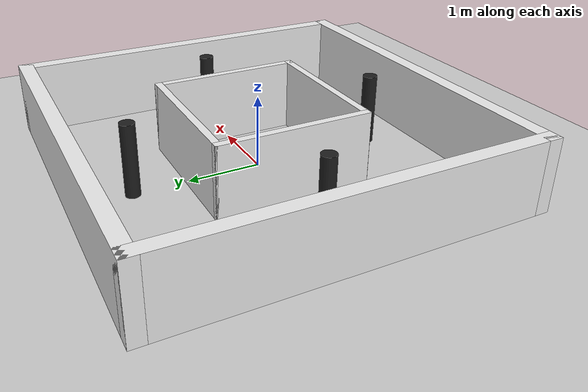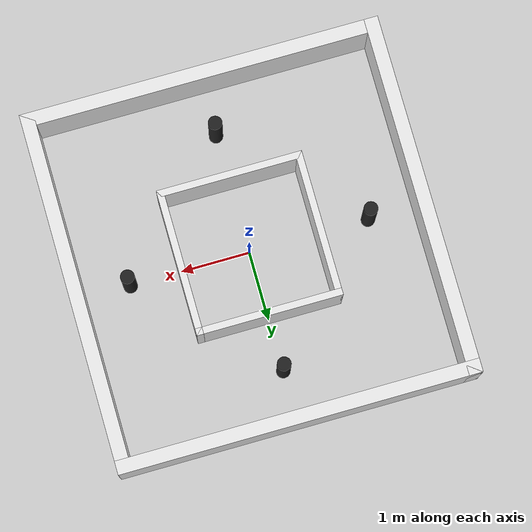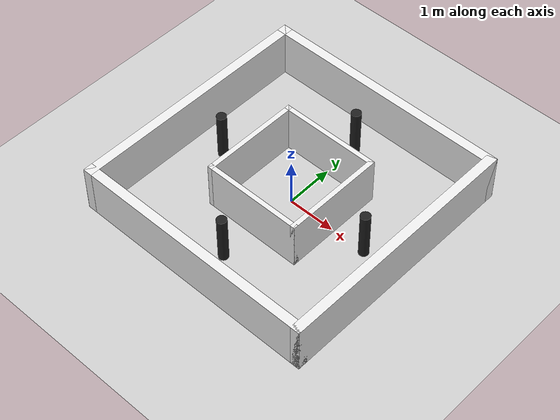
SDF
<sdf version='1.6'>
  <world name='default'>
    <scene>
      <ambient>0.4 0.4 0.4 1</ambient>
      <background>0.7 0.7 0.7 1</background>
      <shadows>1</shadows>
    </scene>

    <gui fullscreen='0'>
      <camera name='user_camera'>
        <pose frame=''>0 -6 8 0 0.8 1.57</pose>
        <view_controller>orbit</view_controller>
        <projection_type>perspective</projection_type>
      </camera>
    </gui>

    <include>
      <uri>model://sun</uri>
    </include>

    <!-- Ground Plane (10x10) -->
    <model name='custom_ground'>
      <static>1</static>
      <link name='link'>
        <collision name='collision'>
          <geometry>
            <plane>
              <normal>0 0 1</normal>
              <size>10 10</size>
            </plane>
          </geometry>
          <surface>
            <friction>
              <ode>
                <mu>100</mu>
                <mu2>50</mu2>
              </ode>
            </friction>
          </surface>
        </collision>
        <visual name='visual'>
          <cast_shadows>0</cast_shadows>
          <geometry>
            <plane>
              <normal>0 0 1</normal>
              <size>10 10</size>
            </plane>
          </geometry>
          <material>
            <script>
              <uri>file:///home/xlf/test_ws/src/model_test/media/materials/scripts/custom_course.material</uri>
              <name>Custom/SandRocks</name>
            </script>
          </material>
        </visual>
      </link>
    </model>

    <!-- OUTER WALLS (5x5m Box) -->
    <model name='wall_1'>
      <pose>0 2.5 0.5 0 0 0</pose>
      <static>1</static>
      <link name='link'>
        <collision name='collision'>
          <geometry> <box> <size>5.2 0.2 1</size> </box> </geometry>
        </collision>
        <visual name='visual'>
          <geometry> <box> <size>5.2 0.2 1</size> </box> </geometry>
          <material>
            <script> <uri>file://media/materials/scripts/gazebo.material</uri> <name>Gazebo/White</name> </script>
          </material>
        </visual>
      </link>
    </model>

    <model name='wall_2'>
      <pose>0 -2.5 0.5 0 0 0</pose>
      <static>1</static>
      <link name='link'>
        <collision name='collision'>
          <geometry> <box> <size>5.2 0.2 1</size> </box> </geometry>
        </collision>
        <visual name='visual'>
          <geometry> <box> <size>5.2 0.2 1</size> </box> </geometry>
          <material>
            <script> <uri>file://media/materials/scripts/gazebo.material</uri> <name>Gazebo/White</name> </script>
          </material>
        </visual>
      </link>
    </model>

    <model name='wall_3'>
      <pose>2.5 0 0.5 0 0 0</pose>
      <static>1</static>
      <link name='link'>
        <collision name='collision'>
          <geometry> <box> <size>0.2 5.2 1</size> </box> </geometry>
        </collision>
        <visual name='visual'>
          <geometry> <box> <size>0.2 5.2 1</size> </box> </geometry>
          <material>
            <script> <uri>file://media/materials/scripts/gazebo.material</uri> <name>Gazebo/White</name> </script>
          </material>
        </visual>
      </link>
    </model>

    <model name='wall_4'>
      <pose>-2.5 0 0.5 0 0 0</pose>
      <static>1</static>
      <link name='link'>
        <collision name='collision'>
          <geometry> <box> <size>0.2 5.2 1</size> </box> </geometry>
        </collision>
        <visual name='visual'>
          <geometry> <box> <size>0.2 5.2 1</size> </box> </geometry>
          <material>
            <script> <uri>file://media/materials/scripts/gazebo.material</uri> <name>Gazebo/White</name> </script>
          </material>
        </visual>
      </link>
    </model>

    <!-- INNER WALLS (3.33x3.33m Box) -->
    <model name='inner_wall_1'>
      <pose>0 1 0.5 0 0 0</pose>
      <static>1</static>
      <link name='link'>
        <collision name='collision'>
          <geometry> <box> <size>2.1 0.1 1</size> </box> </geometry>
        </collision>
        <visual name='visual'>
          <geometry> <box> <size>2.1 0.1 1</size> </box> </geometry>
          <material>
            <script> <uri>file://media/materials/scripts/gazebo.material</uri> <name>Gazebo/White</name> </script>
          </material>
        </visual>
      </link>
    </model>

    <model name='inner_wall_2'>
      <pose>0 -1 0.5 0 0 0</pose>
      <static>1</static>
      <link name='link'>
        <collision name='collision'>
          <geometry> <box> <size>2.1 0.1 1</size> </box> </geometry>
        </collision>
        <visual name='visual'>
          <geometry> <box> <size>2.1 0.1 1</size> </box> </geometry>
          <material>
            <script> <uri>file://media/materials/scripts/gazebo.material</uri> <name>Gazebo/White</name> </script>
          </material>
        </visual>
      </link>
    </model>

    <model name='inner_wall_3'>
      <pose>1 0 0.5 0 0 0</pose>
      <static>1</static>
      <link name='link'>
        <collision name='collision'>
          <geometry> <box> <size>0.1 2.1 1</size> </box> </geometry>
        </collision>
        <visual name='visual'>
          <geometry> <box> <size>0.1 2.1 1</size> </box> </geometry>
          <material>
            <script> <uri>file://media/materials/scripts/gazebo.material</uri> <name>Gazebo/White</name> </script>
          </material>
        </visual>
      </link>
    </model>

    <model name='inner_wall_4'>
      <pose>-1 0 0.5 0 0 0</pose>
      <static>1</static>
      <link name='link'>
        <collision name='collision'>
          <geometry> <box> <size>0.1 2.1 1</size> </box> </geometry>
        </collision>
        <visual name='visual'>
          <geometry> <box> <size>0.1 2.1 1</size> </box> </geometry>
          <material>
            <script> <uri>file://media/materials/scripts/gazebo.material</uri> <name>Gazebo/White</name> </script>
          </material>
        </visual>
      </link>
    </model>

    <!-- OBSTACLES (In the corridor) -->
    <model name='cylinder_1'>
      <pose>1.75 0 0.5 0 0 0</pose>
      <static>1</static>
      <link name='link'>
        <collision name='collision'>
          <geometry> <cylinder> <radius>0.1</radius> <length>1</length> </cylinder> </geometry>
        </collision>
        <visual name='visual'>
          <geometry> <cylinder> <radius>0.1</radius> <length>1</length> </cylinder> </geometry>
          <material>
            <script> <uri>file://media/materials/scripts/gazebo.material</uri> <name>Gazebo/Black</name> </script>
          </material>
        </visual>
      </link>
    </model>

    <model name='cylinder_2'>
      <pose>-1.75 0 0.5 0 0 0</pose>
      <static>1</static>
      <link name='link'>
        <collision name='collision'>
          <geometry> <cylinder> <radius>0.1</radius> <length>1</length> </cylinder> </geometry>
        </collision>
        <visual name='visual'>
          <geometry> <cylinder> <radius>0.1</radius> <length>1</length> </cylinder> </geometry>
          <material>
            <script> <uri>file://media/materials/scripts/gazebo.material</uri> <name>Gazebo/Black</name> </script>
          </material>
        </visual>
      </link>
    </model>

    <model name='cylinder_3'>
      <pose>0 1.75 0.5 0 0 0</pose>
      <static>1</static>
      <link name='link'>
        <collision name='collision'>
          <geometry> <cylinder> <radius>0.1</radius> <length>1</length> </cylinder> </geometry>
        </collision>
        <visual name='visual'>
          <geometry> <cylinder> <radius>0.1</radius> <length>1</length> </cylinder> </geometry>
          <material>
            <script> <uri>file://media/materials/scripts/gazebo.material</uri> <name>Gazebo/Black</name> </script>
          </material>
        </visual>
      </link>
    </model>

    <model name='cylinder_4'>
      <pose>0 -1.75 0.5 0 0 0</pose>
      <static>1</static>
      <link name='link'>
        <collision name='collision'>
          <geometry> <cylinder> <radius>0.1</radius> <length>1</length> </cylinder> </geometry>
        </collision>
        <visual name='visual'>
          <geometry> <cylinder> <radius>0.1</radius> <length>1</length> </cylinder> </geometry>
          <material>
            <script> <uri>file://media/materials/scripts/gazebo.material</uri> <name>Gazebo/Black</name> </script>
          </material>
        </visual>
      </link>
    </model>

  </world>
</sdf>
